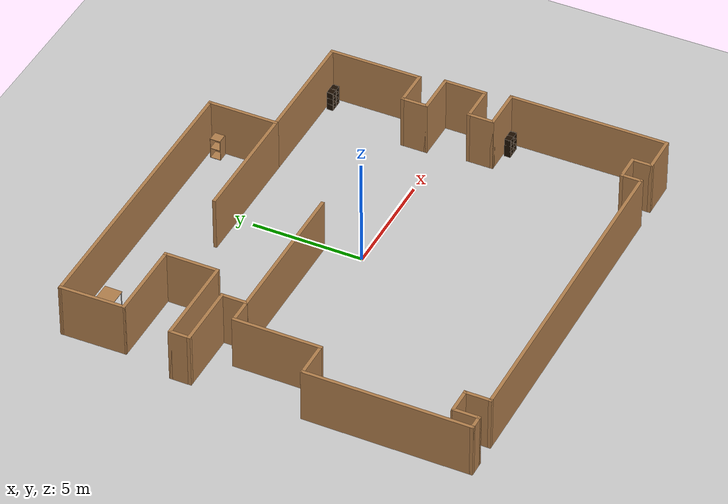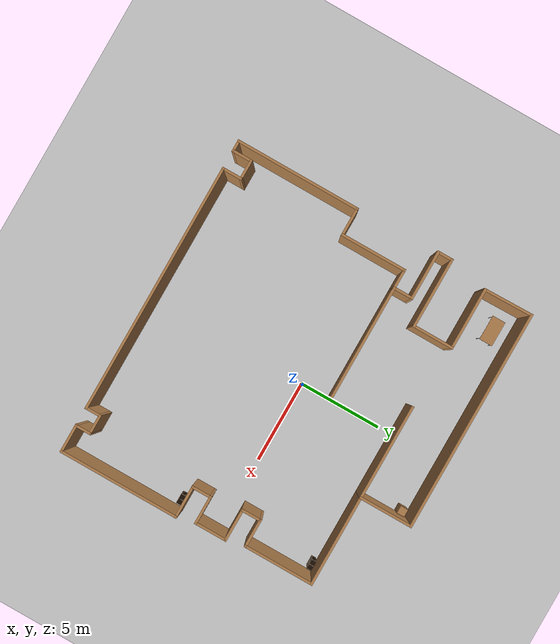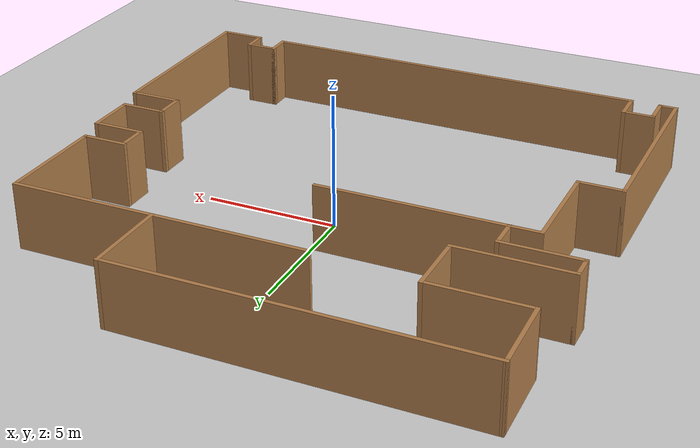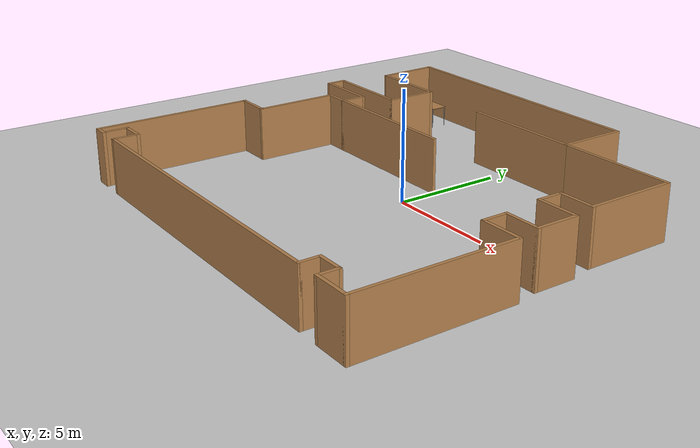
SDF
<sdf version="1.6">
 <world name="default">
  <light name="sun" type="directional">
   <pose>0 0 10 0 -0 0</pose>
   <diffuse>0.8 0.8 0.8 1</diffuse>
   <specular>0.2 0.2 0.2 1</specular>
   <attenuation>
    <range>1000</range>
    <constant>0.9</constant>
    <linear>0.01</linear>
    <quadratic>0.001</quadratic>
   </attenuation>
   <direction>-0.5 0.1 -0.9</direction>
  </light>
  <model name="ground_plane">
   <static>1</static>
   <link name="link">
    <collision name="collision">
     <geometry><plane><normal>0 0 1</normal><size>100 100</size></plane></geometry>
     <surface>
      <contact><collide_bitmask>65535</collide_bitmask></contact>
      <friction><ode><mu>100</mu><mu2>50</mu2></ode></friction>
     </surface>
    </collision>
    <visual name="visual">
     <cast_shadows>0</cast_shadows>
     <geometry><plane><normal>0 0 1</normal><size>100 100</size></plane></geometry>
     <material>
      <script><uri>file://media/materials/scripts/gazebo.material</uri><name>Gazebo/Grey</name></script>
     </material>
    </visual>
   </link>
  </model>
  <gravity>0 0 -9.8</gravity>
  <magnetic_field>6e-06 2.3e-05 -4.2e-05</magnetic_field>
  <atmosphere type="adiabatic"/>
  <physics name="default_physics" default="0" type="ode">
   <max_step_size>0.001</max_step_size>
   <real_time_factor>1</real_time_factor>
   <real_time_update_rate>1000</real_time_update_rate>
  </physics>
  <scene><ambient>0.4 0.4 0.4 1</ambient><background>0.7 0.7 0.7 1</background><shadows>1</shadows></scene>
  <audio><device>default</device></audio>
  <spherical_coordinates>
   <surface_model>EARTH_WGS84</surface_model>
   <latitude_deg>0</latitude_deg>
   <longitude_deg>0</longitude_deg>
   <elevation>0</elevation>
   <heading_deg>0</heading_deg>
  </spherical_coordinates>
  <model name="map_125">
   <pose>-0.128328 -0.287208 0 0 -0 0</pose>
   <link name="Wall_10">
    <collision name="Wall_10_Collision">
     <geometry><box><size>1.75 0.15 2.5</size></box></geometry>
     <pose>0 0 1.25 0 -0 0</pose>
    </collision>
    <visual name="Wall_10_Visual">
     <pose>0 0 1.25 0 -0 0</pose>
     <geometry><box><size>1.75 0.15 2.5</size></box></geometry>
     <material>
      <script><uri>file://media/materials/scripts/gazebo.material</uri><name>Gazebo/Wood</name></script>
      <ambient>1 1 1 1</ambient>
     </material>
     <meta><layer>0</layer></meta>
    </visual>
    <pose>8.65 -0.975652 0 0 -0 3.14159</pose>
   </link>
   <link name="Wall_11">
    <collision name="Wall_11_Collision">
     <geometry><box><size>1.25 0.15 2.5</size></box></geometry>
     <pose>0 0 1.25 0 -0 0</pose>
    </collision>
    <visual name="Wall_11_Visual">
     <pose>0 0 1.25 0 -0 0</pose>
     <geometry><box><size>1.25 0.15 2.5</size></box></geometry>
     <material>
      <script><uri>file://media/materials/scripts/gazebo.material</uri><name>Gazebo/Wood</name></script>
      <ambient>1 1 1 1</ambient>
     </material>
     <meta><layer>0</layer></meta>
    </visual>
    <pose>7.85 -1.52565 0 0 -0 -1.5708</pose>
   </link>
   <link name="Wall_12">
    <collision name="Wall_12_Collision">
     <geometry><box><size>2 0.15 2.5</size></box></geometry>
     <pose>0 0 1.25 0 -0 0</pose>
    </collision>
    <visual name="Wall_12_Visual">
     <pose>0 0 1.25 0 -0 0</pose>
     <geometry><box><size>2 0.15 2.5</size></box></geometry>
     <material>
      <script><uri>file://media/materials/scripts/gazebo.material</uri><name>Gazebo/Wood</name></script>
      <ambient>1 1 1 1</ambient>
     </material>
     <meta><layer>0</layer></meta>
    </visual>
    <pose>8.775 -2.07565 0 0 -0 0</pose>
   </link>
   <link name="Wall_13">
    <collision name="Wall_13_Collision">
     <geometry><box><size>7.25 0.15 2.5</size></box></geometry>
     <pose>0 0 1.25 0 -0 0</pose>
    </collision>
    <visual name="Wall_13_Visual">
     <pose>0 0 1.25 0 -0 0</pose>
     <geometry><box><size>7.25 0.15 2.5</size></box></geometry>
     <material>
      <script><uri>file://media/materials/scripts/gazebo.material</uri><name>Gazebo/Wood</name></script>
      <ambient>1 1 1 1</ambient>
     </material>
     <meta><layer>0</layer></meta>
    </visual>
    <pose>9.7 -5.62565 0 0 -0 -1.5708</pose>
   </link>
   <link name="Wall_14">
    <collision name="Wall_14_Collision">
     <geometry><box><size>1.75 0.15 2.5</size></box></geometry>
     <pose>0 0 1.25 0 -0 0</pose>
    </collision>
    <visual name="Wall_14_Visual">
     <pose>0 0 1.25 0 -0 0</pose>
     <geometry><box><size>1.75 0.15 2.5</size></box></geometry>
     <material>
      <script><uri>file://media/materials/scripts/gazebo.material</uri><name>Gazebo/Wood</name></script>
      <ambient>1 1 1 1</ambient>
     </material>
     <meta><layer>0</layer></meta>
    </visual>
    <pose>8.9 -9.17565 0 0 -0 3.14159</pose>
   </link>
   <link name="Wall_15">
    <collision name="Wall_15_Collision">
     <geometry><box><size>1 0.15 2.5</size></box></geometry>
     <pose>0 0 1.25 0 -0 0</pose>
    </collision>
    <visual name="Wall_15_Visual">
     <pose>0 0 1.25 0 -0 0</pose>
     <geometry><box><size>1 0.15 2.5</size></box></geometry>
     <material>
      <script><uri>file://media/materials/scripts/gazebo.material</uri><name>Gazebo/Wood</name></script>
      <ambient>1 1 1 1</ambient>
     </material>
     <meta><layer>0</layer></meta>
    </visual>
    <pose>8.1 -8.75065 0 0 -0 1.5708</pose>
   </link>
   <link name="Wall_16">
    <collision name="Wall_16_Collision">
     <geometry><box><size>1.25 0.15 2.5</size></box></geometry>
     <pose>0 0 1.25 0 -0 0</pose>
    </collision>
    <visual name="Wall_16_Visual">
     <pose>0 0 1.25 0 -0 0</pose>
     <geometry><box><size>1.25 0.15 2.5</size></box></geometry>
     <material>
      <script><uri>file://media/materials/scripts/gazebo.material</uri><name>Gazebo/Wood</name></script>
      <ambient>1 1 1 1</ambient>
     </material>
     <meta><layer>0</layer></meta>
    </visual>
    <pose>7.55 -8.32565 0 0 -0 3.14159</pose>
   </link>
   <link name="Wall_17">
    <collision name="Wall_17_Collision">
     <geometry><box><size>1 0.15 2.5</size></box></geometry>
     <pose>0 0 1.25 0 -0 0</pose>
    </collision>
    <visual name="Wall_17_Visual">
     <pose>0 0 1.25 0 -0 0</pose>
     <geometry><box><size>1 0.15 2.5</size></box></geometry>
     <material>
      <script><uri>file://media/materials/scripts/gazebo.material</uri><name>Gazebo/Wood</name></script>
      <ambient>1 1 1 1</ambient>
     </material>
     <meta><layer>0</layer></meta>
    </visual>
    <pose>7 -8.75065 0 0 -0 -1.5708</pose>
   </link>
   <link name="Wall_18">
    <collision name="Wall_18_Collision">
     <geometry><box><size>15 0.15 2.5</size></box></geometry>
     <pose>0 0 1.25 0 -0 0</pose>
    </collision>
    <visual name="Wall_18_Visual">
     <pose>0 0 1.25 0 -0 0</pose>
     <geometry><box><size>15 0.15 2.5</size></box></geometry>
     <material>
      <script><uri>file://media/materials/scripts/gazebo.material</uri><name>Gazebo/Wood</name></script>
      <ambient>1 1 1 1</ambient>
     </material>
     <meta><layer>0</layer></meta>
    </visual>
    <pose>-0.425 -9.17565 0 0 -0 3.14159</pose>
   </link>
   <link name="Wall_19">
    <collision name="Wall_19_Collision">
     <geometry><box><size>1.25 0.15 2.5</size></box></geometry>
     <pose>0 0 1.25 0 -0 0</pose>
    </collision>
    <visual name="Wall_19_Visual">
     <pose>0 0 1.25 0 -0 0</pose>
     <geometry><box><size>1.25 0.15 2.5</size></box></geometry>
     <material>
      <script><uri>file://media/materials/scripts/gazebo.material</uri><name>Gazebo/Wood</name></script>
      <ambient>1 1 1 1</ambient>
     </material>
     <meta><layer>0</layer></meta>
    </visual>
    <pose>-7.85 -8.62565 0 0 -0 1.5708</pose>
   </link>
   <link name="Wall_2">
    <collision name="Wall_2_Collision">
     <geometry><box><size>13.25 0.15 2.5</size></box></geometry>
     <pose>0 0 1.25 0 -0 0</pose>
    </collision>
    <visual name="Wall_2_Visual">
     <pose>0 0 1.25 0 -0 0</pose>
     <geometry><box><size>13.25 0.15 2.5</size></box></geometry>
     <material>
      <script><uri>file://media/materials/scripts/gazebo.material</uri><name>Gazebo/Wood</name></script>
      <ambient>1 1 1 1</ambient>
     </material>
     <meta><layer>0</layer></meta>
    </visual>
    <pose>-2.7 9.17435 0 0 -0 0</pose>
   </link>
   <link name="Wall_20">
    <collision name="Wall_20_Collision">
     <geometry><box><size>1.25 0.15 2.5</size></box></geometry>
     <pose>0 0 1.25 0 -0 0</pose>
    </collision>
    <visual name="Wall_20_Visual">
     <pose>0 0 1.25 0 -0 0</pose>
     <geometry><box><size>1.25 0.15 2.5</size></box></geometry>
     <material>
      <script><uri>file://media/materials/scripts/gazebo.material</uri><name>Gazebo/Wood</name></script>
      <ambient>1 1 1 1</ambient>
     </material>
     <meta><layer>0</layer></meta>
    </visual>
    <pose>-8.4 -8.07565 0 0 -0 3.14159</pose>
   </link>
   <link name="Wall_21">
    <collision name="Wall_21_Collision">
     <geometry><box><size>1.25 0.15 2.5</size></box></geometry>
     <pose>0 0 1.25 0 -0 0</pose>
    </collision>
    <visual name="Wall_21_Visual">
     <pose>0 0 1.25 0 -0 0</pose>
     <geometry><box><size>1.25 0.15 2.5</size></box></geometry>
     <material>
      <script><uri>file://media/materials/scripts/gazebo.material</uri><name>Gazebo/Wood</name></script>
      <ambient>1 1 1 1</ambient>
     </material>
     <meta><layer>0</layer></meta>
    </visual>
    <pose>-8.95 -8.62565 0 0 -0 -1.5708</pose>
   </link>
   <link name="Wall_22">
    <collision name="Wall_22_Collision">
     <geometry><box><size>0.75 0.15 2.5</size></box></geometry>
     <pose>0 0 1.25 0 -0 0</pose>
    </collision>
    <visual name="Wall_22_Visual">
     <pose>0 0 1.25 0 -0 0</pose>
     <geometry><box><size>0.75 0.15 2.5</size></box></geometry>
     <material>
      <script><uri>file://media/materials/scripts/gazebo.material</uri><name>Gazebo/Wood</name></script>
      <ambient>1 1 1 1</ambient>
     </material>
     <meta><layer>0</layer></meta>
    </visual>
    <pose>-9.25 -9.17565 0 0 -0 3.14159</pose>
   </link>
   <link name="Wall_23">
    <collision name="Wall_23_Collision">
     <geometry><box><size>7.5 0.15 2.5</size></box></geometry>
     <pose>0 0 1.25 0 -0 0</pose>
    </collision>
    <visual name="Wall_23_Visual">
     <pose>0 0 1.25 0 -0 0</pose>
     <geometry><box><size>7.5 0.15 2.5</size></box></geometry>
     <material>
      <script><uri>file://media/materials/scripts/gazebo.material</uri><name>Gazebo/Wood</name></script>
      <ambient>1 1 1 1</ambient>
     </material>
     <meta><layer>0</layer></meta>
    </visual>
    <pose>-9.55 -5.50065 0 0 -0 1.5708</pose>
   </link>
   <link name="Wall_24">
    <collision name="Wall_24_Collision">
     <geometry><box><size>1.75 0.15 2.5</size></box></geometry>
     <pose>0 0 1.25 0 -0 0</pose>
    </collision>
    <visual name="Wall_24_Visual">
     <pose>0 0 1.25 0 -0 0</pose>
     <geometry><box><size>1.75 0.15 2.5</size></box></geometry>
     <material>
      <script><uri>file://media/materials/scripts/gazebo.material</uri><name>Gazebo/Wood</name></script>
      <ambient>1 1 1 1</ambient>
     </material>
     <meta><layer>0</layer></meta>
    </visual>
    <pose>-8.75 -1.82565 0 0 -0 0</pose>
   </link>
   <link name="Wall_25">
    <collision name="Wall_25_Collision">
     <geometry><box><size>4 0.15 2.5</size></box></geometry>
     <pose>0 0 1.25 0 -0 0</pose>
    </collision>
    <visual name="Wall_25_Visual">
     <pose>0 0 1.25 0 -0 0</pose>
     <geometry><box><size>4 0.15 2.5</size></box></geometry>
     <material>
      <script><uri>file://media/materials/scripts/gazebo.material</uri><name>Gazebo/Wood</name></script>
      <ambient>1 1 1 1</ambient>
     </material>
     <meta><layer>0</layer></meta>
    </visual>
    <pose>-7.95 0.099348 0 0 -0 1.5708</pose>
   </link>
   <link name="Wall_26">
    <collision name="Wall_26_Collision">
     <geometry><box><size>1.25 0.15 2.5</size></box></geometry>
     <pose>0 0 1.25 0 -0 0</pose>
    </collision>
    <visual name="Wall_26_Visual">
     <pose>0 0 1.25 0 -0 0</pose>
     <geometry><box><size>1.25 0.15 2.5</size></box></geometry>
     <material>
      <script><uri>file://media/materials/scripts/gazebo.material</uri><name>Gazebo/Wood</name></script>
      <ambient>1 1 1 1</ambient>
     </material>
     <meta><layer>0</layer></meta>
    </visual>
    <pose>-7.4 2.02435 0 0 -0 0</pose>
   </link>
   <link name="Wall_27">
    <collision name="Wall_27_Collision">
     <geometry><box><size>1.25 0.15 2.5</size></box></geometry>
     <pose>0 0 1.25 0 -0 0</pose>
    </collision>
    <visual name="Wall_27_Visual">
     <pose>0 0 1.25 0 -0 0</pose>
     <geometry><box><size>1.25 0.15 2.5</size></box></geometry>
     <material>
      <script><uri>file://media/materials/scripts/gazebo.material</uri><name>Gazebo/Wood</name></script>
      <ambient>1 1 1 1</ambient>
     </material>
     <meta><layer>0</layer></meta>
    </visual>
    <pose>-6.85 2.57435 0 0 -0 1.5708</pose>
   </link>
   <link name="Wall_28">
    <collision name="Wall_28_Collision">
     <geometry><box><size>3 0.15 2.5</size></box></geometry>
     <pose>0 0 1.25 0 -0 0</pose>
    </collision>
    <visual name="Wall_28_Visual">
     <pose>0 0 1.25 0 -0 0</pose>
     <geometry><box><size>3 0.15 2.5</size></box></geometry>
     <material>
      <script><uri>file://media/materials/scripts/gazebo.material</uri><name>Gazebo/Wood</name></script>
      <ambient>1 1 1 1</ambient>
     </material>
     <meta><layer>0</layer></meta>
    </visual>
    <pose>-8.275 3.12435 0 0 -0 3.14159</pose>
   </link>
   <link name="Wall_29">
    <collision name="Wall_29_Collision">
     <geometry><box><size>1 0.15 2.5</size></box></geometry>
     <pose>0 0 1.25 0 -0 0</pose>
    </collision>
    <visual name="Wall_29_Visual">
     <pose>0 0 1.25 0 -0 0</pose>
     <geometry><box><size>1 0.15 2.5</size></box></geometry>
     <material>
      <script><uri>file://media/materials/scripts/gazebo.material</uri><name>Gazebo/Wood</name></script>
      <ambient>1 1 1 1</ambient>
     </material>
     <meta><layer>0</layer></meta>
    </visual>
    <pose>-9.7 3.54935 0 0 -0 1.5708</pose>
   </link>
   <link name="Wall_3">
    <collision name="Wall_3_Collision">
     <geometry><box><size>3.25 0.15 2.5</size></box></geometry>
     <pose>0 0 1.25 0 -0 0</pose>
    </collision>
    <visual name="Wall_3_Visual">
     <pose>0 0 1.25 0 -0 0</pose>
     <geometry><box><size>3.25 0.15 2.5</size></box></geometry>
     <material>
      <script><uri>file://media/materials/scripts/gazebo.material</uri><name>Gazebo/Wood</name></script>
      <ambient>1 1 1 1</ambient>
     </material>
     <meta><layer>0</layer></meta>
    </visual>
    <pose>3.85 7.62435 0 0 -0 -1.5708</pose>
   </link>
   <link name="Wall_30">
    <collision name="Wall_30_Collision">
     <geometry><box><size>4.25 0.15 2.5</size></box></geometry>
     <pose>0 0 1.25 0 -0 0</pose>
    </collision>
    <visual name="Wall_30_Visual">
     <pose>0 0 1.25 0 -0 0</pose>
     <geometry><box><size>4.25 0.15 2.5</size></box></geometry>
     <material>
      <script><uri>file://media/materials/scripts/gazebo.material</uri><name>Gazebo/Wood</name></script>
      <ambient>1 1 1 1</ambient>
     </material>
     <meta><layer>0</layer></meta>
    </visual>
    <pose>-7.65 3.97435 0 0 -0 0</pose>
   </link>
   <link name="Wall_31">
    <collision name="Wall_31_Collision">
     <geometry><box><size>2.5 0.15 2.5</size></box></geometry>
     <pose>0 0 1.25 0 -0 0</pose>
    </collision>
    <visual name="Wall_31_Visual">
     <pose>0 0 1.25 0 -0 0</pose>
     <geometry><box><size>2.5 0.15 2.5</size></box></geometry>
     <material>
      <script><uri>file://media/materials/scripts/gazebo.material</uri><name>Gazebo/Wood</name></script>
      <ambient>1 1 1 1</ambient>
     </material>
     <meta><layer>0</layer></meta>
    </visual>
    <pose>-5.6 5.14935 0 0 -0 1.5708</pose>
   </link>
   <link name="Wall_32">
    <collision name="Wall_32_Collision">
     <geometry><box><size>3.75 0.15 2.5</size></box></geometry>
     <pose>0 0 1.25 0 -0 0</pose>
    </collision>
    <visual name="Wall_32_Visual">
     <pose>0 0 1.25 0 -0 0</pose>
     <geometry><box><size>3.75 0.15 2.5</size></box></geometry>
     <material>
      <script><uri>file://media/materials/scripts/gazebo.material</uri><name>Gazebo/Wood</name></script>
      <ambient>1 1 1 1</ambient>
     </material>
     <meta><layer>0</layer></meta>
    </visual>
    <pose>-7.4 6.32435 0 0 -0 3.14159</pose>
   </link>
   <link name="Wall_33">
    <collision name="Wall_33_Collision">
     <geometry><box><size>3.00044 0.15 2.5</size></box></geometry>
     <pose>0 0 1.25 0 -0 0</pose>
    </collision>
    <visual name="Wall_33_Visual">
     <pose>0 0 1.25 0 -0 0</pose>
     <geometry><box><size>3.00044 0.15 2.5</size></box></geometry>
     <material>
      <script><uri>file://media/materials/scripts/gazebo.material</uri><name>Gazebo/Wood</name></script>
      <ambient>1 1 1 1</ambient>
     </material>
     <meta><layer>0</layer></meta>
    </visual>
    <pose>-9.225 7.74935 0 0 -0 1.58834</pose>
   </link>
   <link name="Wall_35">
    <collision name="Wall_35_Collision">
     <geometry><box><size>5.75 0.15 2.5</size></box></geometry>
     <pose>0 0 1.25 0 -0 0</pose>
    </collision>
    <visual name="Wall_35_Visual">
     <pose>0 0 1.25 0 -0 0</pose>
     <geometry><box><size>5.75 0.15 2.5</size></box></geometry>
     <material>
      <script><uri>file://media/materials/scripts/gazebo.material</uri><name>Gazebo/Wood</name></script>
      <ambient>1 1 1 1</ambient>
     </material>
     <meta><layer>0</layer></meta>
    </visual>
    <pose>1.05 6.07435 0 0 -0 3.14159</pose>
   </link>
   <link name="Wall_38">
    <collision name="Wall_38_Collision">
     <geometry><box><size>7 0.15 2.5</size></box></geometry>
     <pose>0 0 1.25 0 -0 0</pose>
    </collision>
    <visual name="Wall_38_Visual">
     <pose>0 0 1.25 0 -0 0</pose>
     <geometry><box><size>7 0.15 2.5</size></box></geometry>
     <material>
      <script><uri>file://media/materials/scripts/gazebo.material</uri><name>Gazebo/Wood</name></script>
      <ambient>1 1 1 1</ambient>
     </material>
     <meta><layer>0</layer></meta>
    </visual>
    <pose>-3.425 2.02435 0 0 -0 0</pose>
   </link>
   <link name="Wall_4">
    <collision name="Wall_4_Collision">
     <geometry><box><size>5.5 0.15 2.5</size></box></geometry>
     <pose>0 0 1.25 0 -0 0</pose>
    </collision>
    <visual name="Wall_4_Visual">
     <pose>0 0 1.25 0 -0 0</pose>
     <geometry><box><size>5.5 0.15 2.5</size></box></geometry>
     <material>
      <script><uri>file://media/materials/scripts/gazebo.material</uri><name>Gazebo/Wood</name></script>
      <ambient>1 1 1 1</ambient>
     </material>
     <meta><layer>0</layer></meta>
    </visual>
    <pose>6.525 6.07435 0 0 -0 0</pose>
   </link>
   <link name="Wall_5">
    <collision name="Wall_5_Collision">
     <geometry><box><size>4.25 0.15 2.5</size></box></geometry>
     <pose>0 0 1.25 0 -0 0</pose>
    </collision>
    <visual name="Wall_5_Visual">
     <pose>0 0 1.25 0 -0 0</pose>
     <geometry><box><size>4.25 0.15 2.5</size></box></geometry>
     <material>
      <script><uri>file://media/materials/scripts/gazebo.material</uri><name>Gazebo/Wood</name></script>
      <ambient>1 1 1 1</ambient>
     </material>
     <meta><layer>0</layer></meta>
    </visual>
    <pose>9.2 4.02435 0 0 -0 -1.5708</pose>
   </link>
   <link name="Wall_6">
    <collision name="Wall_6_Collision">
     <geometry><box><size>1.75 0.15 2.5</size></box></geometry>
     <pose>0 0 1.25 0 -0 0</pose>
    </collision>
    <visual name="Wall_6_Visual">
     <pose>0 0 1.25 0 -0 0</pose>
     <geometry><box><size>1.75 0.15 2.5</size></box></geometry>
     <material>
      <script><uri>file://media/materials/scripts/gazebo.material</uri><name>Gazebo/Wood</name></script>
      <ambient>1 1 1 1</ambient>
     </material>
     <meta><layer>0</layer></meta>
    </visual>
    <pose>8.4 1.97435 0 0 -0 3.14159</pose>
   </link>
   <link name="Wall_7">
    <collision name="Wall_7_Collision">
     <geometry><box><size>1.25 0.15 2.5</size></box></geometry>
     <pose>0 0 1.25 0 -0 0</pose>
    </collision>
    <visual name="Wall_7_Visual">
     <pose>0 0 1.25 0 -0 0</pose>
     <geometry><box><size>1.25 0.15 2.5</size></box></geometry>
     <material>
      <script><uri>file://media/materials/scripts/gazebo.material</uri><name>Gazebo/Wood</name></script>
      <ambient>1 1 1 1</ambient>
     </material>
     <meta><layer>0</layer></meta>
    </visual>
    <pose>7.6 1.42435 0 0 -0 -1.5708</pose>
   </link>
   <link name="Wall_8">
    <collision name="Wall_8_Collision">
     <geometry><box><size>2 0.15 2.5</size></box></geometry>
     <pose>0 0 1.25 0 -0 0</pose>
    </collision>
    <visual name="Wall_8_Visual">
     <pose>0 0 1.25 0 -0 0</pose>
     <geometry><box><size>2 0.15 2.5</size></box></geometry>
     <material>
      <script><uri>file://media/materials/scripts/gazebo.material</uri><name>Gazebo/Wood</name></script>
      <ambient>1 1 1 1</ambient>
     </material>
     <meta><layer>0</layer></meta>
    </visual>
    <pose>8.525 0.874348 0 0 -0 0</pose>
   </link>
   <link name="Wall_9">
    <collision name="Wall_9_Collision">
     <geometry><box><size>2 0.15 2.5</size></box></geometry>
     <pose>0 0 1.25 0 -0 0</pose>
    </collision>
    <visual name="Wall_9_Visual">
     <pose>0 0 1.25 0 -0 0</pose>
     <geometry><box><size>2 0.15 2.5</size></box></geometry>
     <material>
      <script><uri>file://media/materials/scripts/gazebo.material</uri><name>Gazebo/Wood</name></script>
      <ambient>1 1 1 1</ambient>
     </material>
     <meta><layer>0</layer></meta>
    </visual>
    <pose>9.45 -0.050652 0 0 -0 -1.5708</pose>
   </link>
   <static>1</static>
  </model>
  <model name="6_Cube_StorageE">
   <link name="Wall_0">
    <pose>0 0 0.01 0 -0 0</pose>
    <inertial>
     <mass>1.6201</mass>
     <inertia><ixx>0.0119</ixx><iyy>0.0631</iyy><izz>0.0513</izz><ixy>0</ixy><ixz>0</ixz><iyz>0</iyz></inertia>
    </inertial>
    <collision name="Wall_0_Collision"><geometry><box><size>0.616 0.296 0.02</size></box></geometry></collision>
    <visual name="Wall_0_Visual">
     <geometry><box><size>0.616 0.296 0.02</size></box></geometry>
     <material>
      <script><uri>file://media/materials/scripts/gazebo.material</uri><name>Gazebo/Grey</name></script>
      <ambient>0.105882 0.0509804 0 1</ambient>
     </material>
    </visual>
   </link>
   <joint name="0_2" type="fixed">
    <pose>-0.308 0 0 0 -0 0</pose>
    <parent>Wall_2</parent>
    <child>Wall_0</child>
    <axis>
     <xyz>1 0 0</xyz>
     <use_parent_model_frame>0</use_parent_model_frame>
     <limit><lower>-1e+16</lower><upper>1e+16</upper></limit>
    </axis>
   </joint>
   <joint name="0_12" type="fixed">
    <parent>Wall_12</parent>
    <child>Wall_0</child>
    <axis>
     <xyz>0 0 1</xyz>
     <use_parent_model_frame>0</use_parent_model_frame>
     <limit><lower>-1e+16</lower><upper>1e+16</upper></limit>
    </axis>
   </joint>
   <joint name="0_4" type="fixed">
    <pose>0.308 0 0 0 -0 0</pose>
    <parent>Wall_4</parent>
    <child>Wall_0</child>
    <axis>
     <xyz>1 0 0</xyz>
     <use_parent_model_frame>0</use_parent_model_frame>
     <limit><lower>-1e+16</lower><upper>1e+16</upper></limit>
    </axis>
   </joint>
   <link name="Wall_10">
    <pose>0 0 0.61 0 -0 0</pose>
    <inertial>
     <mass>1.6201</mass>
     <inertia><ixx>0.0119</ixx><iyy>0.0631</iyy><izz>0.0513</izz><ixy>0</ixy><ixz>0</ixz><iyz>0</iyz></inertia>
    </inertial>
    <collision name="Wall_10_Collision"><geometry><box><size>0.616 0.296 0.02</size></box></geometry></collision>
    <visual name="Wall_10_Visual">
     <geometry><box><size>0.616 0.296 0.02</size></box></geometry>
     <material>
      <script><uri>file://media/materials/scripts/gazebo.material</uri><name>Gazebo/Grey</name></script>
      <ambient>0.105882 0.0509804 0 1</ambient>
     </material>
    </visual>
   </link>
   <joint name="10_2" type="fixed">
    <pose>-0.308 0 0 0 -0 0</pose>
    <parent>Wall_2</parent>
    <child>Wall_10</child>
    <axis>
     <xyz>1 0 0</xyz>
     <use_parent_model_frame>0</use_parent_model_frame>
     <limit><lower>-1e+16</lower><upper>1e+16</upper></limit>
    </axis>
   </joint>
   <joint name="10_12" type="fixed">
    <parent>Wall_12</parent>
    <child>Wall_10</child>
    <axis>
     <xyz>0 0 1</xyz>
     <use_parent_model_frame>0</use_parent_model_frame>
     <limit><lower>-1e+16</lower><upper>1e+16</upper></limit>
    </axis>
   </joint>
   <joint name="10_4" type="fixed">
    <pose>0.308 0 0 0 -0 0</pose>
    <parent>Wall_4</parent>
    <child>Wall_10</child>
    <axis>
     <xyz>1 0 0</xyz>
     <use_parent_model_frame>0</use_parent_model_frame>
     <limit><lower>-1e+16</lower><upper>1e+16</upper></limit>
    </axis>
   </joint>
   <link name="Wall_12">
    <pose>0 0 0.4575 0 -0 0</pose>
    <inertial>
     <mass>2.4065</mass>
     <inertia><ixx>0.0177</ixx><iyy>0.1855</iyy><izz>0.168</izz><ixy>0</ixy><ixz>0</ixz><iyz>0</iyz></inertia>
    </inertial>
    <collision name="Wall_12_Collision"><geometry><box><size>0.02 0.296 0.915</size></box></geometry></collision>
    <visual name="Wall_12_Visual">
     <geometry><box><size>0.02 0.296 0.915</size></box></geometry>
     <material>
      <script><uri>file://media/materials/scripts/gazebo.material</uri><name>Gazebo/Grey</name></script>
      <ambient>0.105882 0.0509804 0 1</ambient>
     </material>
    </visual>
   </link>
   <link name="Wall_2">
    <pose>-0.298 0 0.4575 0 -0 0</pose>
    <inertial>
     <mass>2.4065</mass>
     <inertia><ixx>0.0177</ixx><iyy>0.1855</iyy><izz>0.168</izz><ixy>0</ixy><ixz>0</ixz><iyz>0</iyz></inertia>
    </inertial>
    <collision name="Wall_2_Collision"><geometry><box><size>0.02 0.296 0.915</size></box></geometry></collision>
    <visual name="Wall_2_Visual">
     <geometry><box><size>0.02 0.296 0.915</size></box></geometry>
     <material>
      <script><uri>file://media/materials/scripts/gazebo.material</uri><name>Gazebo/Grey</name></script>
      <ambient>0.105882 0.0509804 0 1</ambient>
     </material>
    </visual>
   </link>
   <link name="Wall_4">
    <pose>0.298 0 0.4575 0 -0 0</pose>
    <inertial>
     <mass>2.4065</mass>
     <inertia><ixx>0.0177</ixx><iyy>0.1855</iyy><izz>0.168</izz><ixy>0</ixy><ixz>0</ixz><iyz>0</iyz></inertia>
    </inertial>
    <collision name="Wall_4_Collision"><geometry><box><size>0.02 0.296 0.915</size></box></geometry></collision>
    <visual name="Wall_4_Visual">
     <geometry><box><size>0.02 0.296 0.915</size></box></geometry>
     <material>
      <script><uri>file://media/materials/scripts/gazebo.material</uri><name>Gazebo/Grey</name></script>
      <ambient>0.105882 0.0509804 0 1</ambient>
     </material>
    </visual>
   </link>
   <link name="Wall_6">
    <pose>0 0 0.905 0 -0 0</pose>
    <inertial>
     <mass>1.6201</mass>
     <inertia><ixx>0.0119</ixx><iyy>0.0631</iyy><izz>0.0513</izz><ixy>0</ixy><ixz>0</ixz><iyz>0</iyz></inertia>
    </inertial>
    <collision name="Wall_6_Collision"><geometry><box><size>0.616 0.296 0.02</size></box></geometry></collision>
    <visual name="Wall_6_Visual">
     <geometry><box><size>0.616 0.296 0.02</size></box></geometry>
     <material>
      <script><uri>file://media/materials/scripts/gazebo.material</uri><name>Gazebo/Grey</name></script>
      <ambient>0.105882 0.0509804 0 1</ambient>
     </material>
    </visual>
   </link>
   <joint name="6_2" type="fixed">
    <pose>-0.308 0 0 0 -0 0</pose>
    <parent>Wall_2</parent>
    <child>Wall_6</child>
    <axis>
     <xyz>2 0 0</xyz>
     <use_parent_model_frame>0</use_parent_model_frame>
     <limit><lower>-1e+16</lower><upper>1e+16</upper></limit>
    </axis>
   </joint>
   <joint name="6_12" type="fixed">
    <parent>Wall_12</parent>
    <child>Wall_6</child>
    <axis>
     <xyz>0 0 1</xyz>
     <use_parent_model_frame>0</use_parent_model_frame>
     <limit><lower>-1e+16</lower><upper>1e+16</upper></limit>
    </axis>
   </joint>
   <joint name="6_4" type="fixed">
    <pose>0.308 0 0 0 -0 0</pose>
    <parent>Wall_4</parent>
    <child>Wall_6</child>
    <axis>
     <xyz>1 0 0</xyz>
     <use_parent_model_frame>0</use_parent_model_frame>
     <limit><lower>-1e+16</lower><upper>1e+16</upper></limit>
    </axis>
   </joint>
   <link name="Wall_8">
    <pose>0 0 0.305 0 -0 0</pose>
    <inertial>
     <mass>1.6201</mass>
     <inertia><ixx>0.0119</ixx><iyy>0.0631</iyy><izz>0.0513</izz><ixy>0</ixy><ixz>0</ixz><iyz>0</iyz></inertia>
    </inertial>
    <collision name="Wall_8_Collision"><geometry><box><size>0.616 0.296 0.02</size></box></geometry></collision>
    <visual name="Wall_8_Visual">
     <geometry><box><size>0.616 0.296 0.02</size></box></geometry>
     <material>
      <script><uri>file://media/materials/scripts/gazebo.material</uri><name>Gazebo/Grey</name></script>
      <ambient>0.105882 0.0509804 0 1</ambient>
     </material>
    </visual>
   </link>
   <joint name="8_2" type="fixed">
    <pose>-0.308 0 0 0 -0 0</pose>
    <parent>Wall_2</parent>
    <child>Wall_8</child>
    <axis>
     <xyz>1 0 0</xyz>
     <use_parent_model_frame>0</use_parent_model_frame>
     <limit><lower>-1e+16</lower><upper>1e+16</upper></limit>
    </axis>
   </joint>
   <joint name="8_12" type="fixed">
    <parent>Wall_12</parent>
    <child>Wall_8</child>
    <axis>
     <xyz>0 0 1</xyz>
     <use_parent_model_frame>0</use_parent_model_frame>
     <limit><lower>-1e+16</lower><upper>1e+16</upper></limit>
    </axis>
   </joint>
   <joint name="8_4" type="fixed">
    <pose>0.308 0 0 0 -0 0</pose>
    <parent>Wall_4</parent>
    <child>Wall_8</child>
    <axis>
     <xyz>1 0 0</xyz>
     <use_parent_model_frame>0</use_parent_model_frame>
     <limit><lower>-1e+16</lower><upper>1e+16</upper></limit>
    </axis>
   </joint>
   <static>1</static>
   <pose>8.9554 -2.6482 0 0 -0 0</pose>
  </model>
  <model name="6_Cube_StorageE_0">
   <link name="Wall_0">
    <pose>0 0 0.01 0 -0 0</pose>
    <inertial>
     <mass>1.6201</mass>
     <inertia><ixx>0.0119</ixx><iyy>0.0631</iyy><izz>0.0513</izz><ixy>0</ixy><ixz>0</ixz><iyz>0</iyz></inertia>
    </inertial>
    <collision name="Wall_0_Collision"><geometry><box><size>0.616 0.296 0.02</size></box></geometry></collision>
    <visual name="Wall_0_Visual">
     <geometry><box><size>0.616 0.296 0.02</size></box></geometry>
     <material>
      <script><uri>file://media/materials/scripts/gazebo.material</uri><name>Gazebo/Grey</name></script>
      <ambient>0.105882 0.0509804 0 1</ambient>
     </material>
    </visual>
   </link>
   <joint name="0_2" type="fixed">
    <pose>-0.308 0 0 0 -0 0</pose>
    <parent>Wall_2</parent>
    <child>Wall_0</child>
    <axis>
     <xyz>1 0 0</xyz>
     <use_parent_model_frame>0</use_parent_model_frame>
     <limit><lower>-1e+16</lower><upper>1e+16</upper></limit>
    </axis>
   </joint>
   <joint name="0_12" type="fixed">
    <parent>Wall_12</parent>
    <child>Wall_0</child>
    <axis>
     <xyz>0 0 1</xyz>
     <use_parent_model_frame>0</use_parent_model_frame>
     <limit><lower>-1e+16</lower><upper>1e+16</upper></limit>
    </axis>
   </joint>
   <joint name="0_4" type="fixed">
    <pose>0.308 0 0 0 -0 0</pose>
    <parent>Wall_4</parent>
    <child>Wall_0</child>
    <axis>
     <xyz>1 0 0</xyz>
     <use_parent_model_frame>0</use_parent_model_frame>
     <limit><lower>-1e+16</lower><upper>1e+16</upper></limit>
    </axis>
   </joint>
   <link name="Wall_10">
    <pose>0 0 0.61 0 -0 0</pose>
    <inertial>
     <mass>1.6201</mass>
     <inertia><ixx>0.0119</ixx><iyy>0.0631</iyy><izz>0.0513</izz><ixy>0</ixy><ixz>0</ixz><iyz>0</iyz></inertia>
    </inertial>
    <collision name="Wall_10_Collision"><geometry><box><size>0.616 0.296 0.02</size></box></geometry></collision>
    <visual name="Wall_10_Visual">
     <geometry><box><size>0.616 0.296 0.02</size></box></geometry>
     <material>
      <script><uri>file://media/materials/scripts/gazebo.material</uri><name>Gazebo/Grey</name></script>
      <ambient>0.105882 0.0509804 0 1</ambient>
     </material>
    </visual>
   </link>
   <joint name="10_2" type="fixed">
    <pose>-0.308 0 0 0 -0 0</pose>
    <parent>Wall_2</parent>
    <child>Wall_10</child>
    <axis>
     <xyz>1 0 0</xyz>
     <use_parent_model_frame>0</use_parent_model_frame>
     <limit><lower>-1e+16</lower><upper>1e+16</upper></limit>
    </axis>
   </joint>
   <joint name="10_12" type="fixed">
    <parent>Wall_12</parent>
    <child>Wall_10</child>
    <axis>
     <xyz>0 0 1</xyz>
     <use_parent_model_frame>0</use_parent_model_frame>
     <limit><lower>-1e+16</lower><upper>1e+16</upper></limit>
    </axis>
   </joint>
   <joint name="10_4" type="fixed">
    <pose>0.308 0 0 0 -0 0</pose>
    <parent>Wall_4</parent>
    <child>Wall_10</child>
    <axis>
     <xyz>1 0 0</xyz>
     <use_parent_model_frame>0</use_parent_model_frame>
     <limit><lower>-1e+16</lower><upper>1e+16</upper></limit>
    </axis>
   </joint>
   <link name="Wall_12">
    <pose>0 0 0.4575 0 -0 0</pose>
    <inertial>
     <mass>2.4065</mass>
     <inertia><ixx>0.0177</ixx><iyy>0.1855</iyy><izz>0.168</izz><ixy>0</ixy><ixz>0</ixz><iyz>0</iyz></inertia>
    </inertial>
    <collision name="Wall_12_Collision"><geometry><box><size>0.02 0.296 0.915</size></box></geometry></collision>
    <visual name="Wall_12_Visual">
     <geometry><box><size>0.02 0.296 0.915</size></box></geometry>
     <material>
      <script><uri>file://media/materials/scripts/gazebo.material</uri><name>Gazebo/Grey</name></script>
      <ambient>0.105882 0.0509804 0 1</ambient>
     </material>
    </visual>
   </link>
   <link name="Wall_2">
    <pose>-0.298 0 0.4575 0 -0 0</pose>
    <inertial>
     <mass>2.4065</mass>
     <inertia><ixx>0.0177</ixx><iyy>0.1855</iyy><izz>0.168</izz><ixy>0</ixy><ixz>0</ixz><iyz>0</iyz></inertia>
    </inertial>
    <collision name="Wall_2_Collision"><geometry><box><size>0.02 0.296 0.915</size></box></geometry></collision>
    <visual name="Wall_2_Visual">
     <geometry><box><size>0.02 0.296 0.915</size></box></geometry>
     <material>
      <script><uri>file://media/materials/scripts/gazebo.material</uri><name>Gazebo/Grey</name></script>
      <ambient>0.105882 0.0509804 0 1</ambient>
     </material>
    </visual>
   </link>
   <link name="Wall_4">
    <pose>0.298 0 0.4575 0 -0 0</pose>
    <inertial>
     <mass>2.4065</mass>
     <inertia><ixx>0.0177</ixx><iyy>0.1855</iyy><izz>0.168</izz><ixy>0</ixy><ixz>0</ixz><iyz>0</iyz></inertia>
    </inertial>
    <collision name="Wall_4_Collision"><geometry><box><size>0.02 0.296 0.915</size></box></geometry></collision>
    <visual name="Wall_4_Visual">
     <geometry><box><size>0.02 0.296 0.915</size></box></geometry>
     <material>
      <script><uri>file://media/materials/scripts/gazebo.material</uri><name>Gazebo/Grey</name></script>
      <ambient>0.105882 0.0509804 0 1</ambient>
     </material>
    </visual>
   </link>
   <link name="Wall_6">
    <pose>0 0 0.905 0 -0 0</pose>
    <inertial>
     <mass>1.6201</mass>
     <inertia><ixx>0.0119</ixx><iyy>0.0631</iyy><izz>0.0513</izz><ixy>0</ixy><ixz>0</ixz><iyz>0</iyz></inertia>
    </inertial>
    <collision name="Wall_6_Collision"><geometry><box><size>0.616 0.296 0.02</size></box></geometry></collision>
    <visual name="Wall_6_Visual">
     <geometry><box><size>0.616 0.296 0.02</size></box></geometry>
     <material>
      <script><uri>file://media/materials/scripts/gazebo.material</uri><name>Gazebo/Grey</name></script>
      <ambient>0.105882 0.0509804 0 1</ambient>
     </material>
    </visual>
   </link>
   <joint name="6_2" type="fixed">
    <pose>-0.308 0 0 0 -0 0</pose>
    <parent>Wall_2</parent>
    <child>Wall_6</child>
    <axis>
     <xyz>2 0 0</xyz>
     <use_parent_model_frame>0</use_parent_model_frame>
     <limit><lower>-1e+16</lower><upper>1e+16</upper></limit>
    </axis>
   </joint>
   <joint name="6_12" type="fixed">
    <parent>Wall_12</parent>
    <child>Wall_6</child>
    <axis>
     <xyz>0 0 1</xyz>
     <use_parent_model_frame>0</use_parent_model_frame>
     <limit><lower>-1e+16</lower><upper>1e+16</upper></limit>
    </axis>
   </joint>
   <joint name="6_4" type="fixed">
    <pose>0.308 0 0 0 -0 0</pose>
    <parent>Wall_4</parent>
    <child>Wall_6</child>
    <axis>
     <xyz>1 0 0</xyz>
     <use_parent_model_frame>0</use_parent_model_frame>
     <limit><lower>-1e+16</lower><upper>1e+16</upper></limit>
    </axis>
   </joint>
   <link name="Wall_8">
    <pose>0 0 0.305 0 -0 0</pose>
    <inertial>
     <mass>1.6201</mass>
     <inertia><ixx>0.0119</ixx><iyy>0.0631</iyy><izz>0.0513</izz><ixy>0</ixy><ixz>0</ixz><iyz>0</iyz></inertia>
    </inertial>
    <collision name="Wall_8_Collision"><geometry><box><size>0.616 0.296 0.02</size></box></geometry></collision>
    <visual name="Wall_8_Visual">
     <geometry><box><size>0.616 0.296 0.02</size></box></geometry>
     <material>
      <script><uri>file://media/materials/scripts/gazebo.material</uri><name>Gazebo/Grey</name></script>
      <ambient>0.105882 0.0509804 0 1</ambient>
     </material>
    </visual>
   </link>
   <joint name="8_2" type="fixed">
    <pose>-0.308 0 0 0 -0 0</pose>
    <parent>Wall_2</parent>
    <child>Wall_8</child>
    <axis>
     <xyz>1 0 0</xyz>
     <use_parent_model_frame>0</use_parent_model_frame>
     <limit><lower>-1e+16</lower><upper>1e+16</upper></limit>
    </axis>
   </joint>
   <joint name="8_12" type="fixed">
    <parent>Wall_12</parent>
    <child>Wall_8</child>
    <axis>
     <xyz>0 0 1</xyz>
     <use_parent_model_frame>0</use_parent_model_frame>
     <limit><lower>-1e+16</lower><upper>1e+16</upper></limit>
    </axis>
   </joint>
   <joint name="8_4" type="fixed">
    <pose>0.308 0 0 0 -0 0</pose>
    <parent>Wall_4</parent>
    <child>Wall_8</child>
    <axis>
     <xyz>1 0 0</xyz>
     <use_parent_model_frame>0</use_parent_model_frame>
     <limit><lower>-1e+16</lower><upper>1e+16</upper></limit>
    </axis>
   </joint>
   <static>1</static>
   <pose>8.52112 5.4911 0 0 -0 0</pose>
  </model>
  <model name="cabinet">
   <static>1</static>
   <link name="cabinet_bottom_plate">
    <inertial>
     <pose>0 0 -1 0 -0 0</pose>
     <inertia><ixx>2.05</ixx><ixy>0</ixy><ixz>0</ixz><iyy>2.05</iyy><iyz>0</iyz><izz>2.05</izz></inertia>
     <mass>25</mass>
    </inertial>
    <collision name="cabinet_bottom_plate_geom">
     <pose>0 0 0.01 0 -0 0</pose>
     <geometry><box><size>0.45 0.45 0.02</size></box></geometry>
    </collision>
    <visual name="cabinet_bottom_plate_geom_visual">
     <pose>0 0 0.01 0 -0 0</pose>
     <geometry><box><size>0.45 0.45 0.02</size></box></geometry>
     <material>
      <script><uri>file://media/materials/scripts/gazebo.material</uri><name>Gazebo/Wood</name></script>
     </material>
    </visual>
    <collision name="cabinet_bottom_plate_geom_cabinet_back_plate">
     <pose>0.235 0 0.51 0 -0 0</pose>
     <geometry><box><size>0.02 0.45 1.02</size></box></geometry>
    </collision>
    <visual name="cabinet_bottom_plate_geom_cabinet_back_plate_visual">
     <pose>0.235 0 0.51 0 -0 0</pose>
     <geometry><box><size>0.02 0.45 1.02</size></box></geometry>
     <material>
      <script><uri>file://media/materials/scripts/gazebo.material</uri><name>Gazebo/Wood</name></script>
     </material>
    </visual>
    <collision name="cabinet_bottom_plate_geom_cabinet_left_plate">
     <pose>0 0.235 0.51 0 -0 0</pose>
     <geometry><box><size>0.45 0.02 1.02</size></box></geometry>
    </collision>
    <visual name="cabinet_bottom_plate_geom_cabinet_left_plate_visual">
     <pose>0 0.235 0.51 0 -0 0</pose>
     <geometry><box><size>0.45 0.02 1.02</size></box></geometry>
     <material>
      <script><uri>file://media/materials/scripts/gazebo.material</uri><name>Gazebo/Wood</name></script>
     </material>
    </visual>
    <collision name="cabinet_bottom_plate_geom_cabinet_middle_plate">
     <pose>0 0 0.51 0 -0 0</pose>
     <geometry><box><size>0.45 0.45 0.02</size></box></geometry>
    </collision>
    <visual name="cabinet_bottom_plate_geom_cabinet_middle_plate_visual">
     <pose>0 0 0.51 0 -0 0</pose>
     <geometry><box><size>0.45 0.45 0.02</size></box></geometry>
     <material>
      <script><uri>file://media/materials/scripts/gazebo.material</uri><name>Gazebo/Wood</name></script>
     </material>
    </visual>
    <collision name="cabinet_bottom_plate_geom_cabinet_right_plate">
     <pose>0 -0.235 0.51 0 -0 0</pose>
     <geometry><box><size>0.45 0.02 1.02</size></box></geometry>
    </collision>
    <visual name="cabinet_bottom_plate_geom_cabinet_right_plate_visual">
     <pose>0 -0.235 0.51 0 -0 0</pose>
     <geometry><box><size>0.45 0.02 1.02</size></box></geometry>
     <material>
      <script><uri>file://media/materials/scripts/gazebo.material</uri><name>Gazebo/Wood</name></script>
     </material>
    </visual>
    <collision name="cabinet_bottom_plate_geom_cabinet_top_plate">
     <pose>0 0 1.01 0 -0 0</pose>
     <geometry><box><size>0.45 0.45 0.02</size></box></geometry>
    </collision>
    <visual name="cabinet_bottom_plate_geom_cabinet_top_plate_visual">
     <pose>0 0 1.01 0 -0 0</pose>
     <geometry><box><size>0.45 0.45 0.02</size></box></geometry>
     <material>
      <script><uri>file://media/materials/scripts/gazebo.material</uri><name>Gazebo/Wood</name></script>
     </material>
    </visual>
   </link>
   <pose>3.37879 8.39661 0 0 -0 0</pose>
  </model>
  <model name="table">
   <static>1</static>
   <link name="link">
    <collision name="surface">
     <pose>0 0 1 0 -0 0</pose>
     <geometry><box><size>1.5 0.8 0.03</size></box></geometry>
     <surface><friction><ode><mu>0.6</mu><mu2>0.6</mu2></ode></friction></surface>
    </collision>
    <visual name="visual1">
     <pose>0 0 1 0 -0 0</pose>
     <geometry><box><size>1.5 0.8 0.03</size></box></geometry>
     <material>
      <script><uri>file://media/materials/scripts/gazebo.material</uri><name>Gazebo/Wood</name></script>
     </material>
    </visual>
    <collision name="front_left_leg">
     <pose>0.68 0.38 0.5 0 -0 0</pose>
     <geometry><cylinder><radius>0.02</radius><length>1</length></cylinder></geometry>
    </collision>
    <visual name="front_left_leg">
     <pose>0.68 0.38 0.5 0 -0 0</pose>
     <geometry><cylinder><radius>0.02</radius><length>1</length></cylinder></geometry>
     <material>
      <script><uri>file://media/materials/scripts/gazebo.material</uri><name>Gazebo/Grey</name></script>
     </material>
    </visual>
    <collision name="front_right_leg">
     <pose>0.68 -0.38 0.5 0 -0 0</pose>
     <geometry><cylinder><radius>0.02</radius><length>1</length></cylinder></geometry>
    </collision>
    <visual name="front_right_leg">
     <pose>0.68 -0.38 0.5 0 -0 0</pose>
     <geometry><cylinder><radius>0.02</radius><length>1</length></cylinder></geometry>
     <material>
      <script><uri>file://media/materials/scripts/gazebo.material</uri><name>Gazebo/Grey</name></script>
     </material>
    </visual>
    <collision name="back_right_leg">
     <pose>-0.68 -0.38 0.5 0 -0 0</pose>
     <geometry><cylinder><radius>0.02</radius><length>1</length></cylinder></geometry>
    </collision>
    <visual name="back_right_leg">
     <pose>-0.68 -0.38 0.5 0 -0 0</pose>
     <geometry><cylinder><radius>0.02</radius><length>1</length></cylinder></geometry>
     <material>
      <script><uri>file://media/materials/scripts/gazebo.material</uri><name>Gazebo/Grey</name></script>
     </material>
    </visual>
    <collision name="back_left_leg">
     <pose>-0.68 0.38 0.5 0 -0 0</pose>
     <geometry><cylinder><radius>0.02</radius><length>1</length></cylinder></geometry>
    </collision>
    <visual name="back_left_leg">
     <pose>-0.68 0.38 0.5 0 -0 0</pose>
     <geometry><cylinder><radius>0.02</radius><length>1</length></cylinder></geometry>
     <material>
      <script><uri>file://media/materials/scripts/gazebo.material</uri><name>Gazebo/Grey</name></script>
     </material>
    </visual>
   </link>
   <pose>-7.82736 7.75526 0 0 -0 0</pose>
  </model>
 </world>
</sdf>
